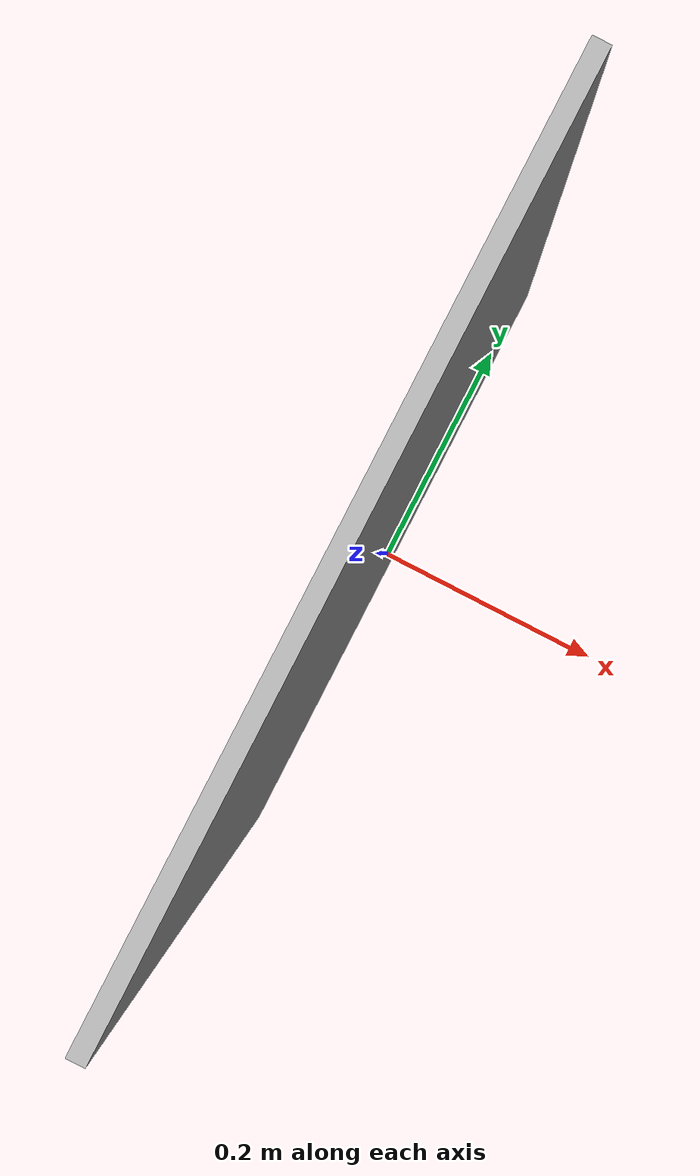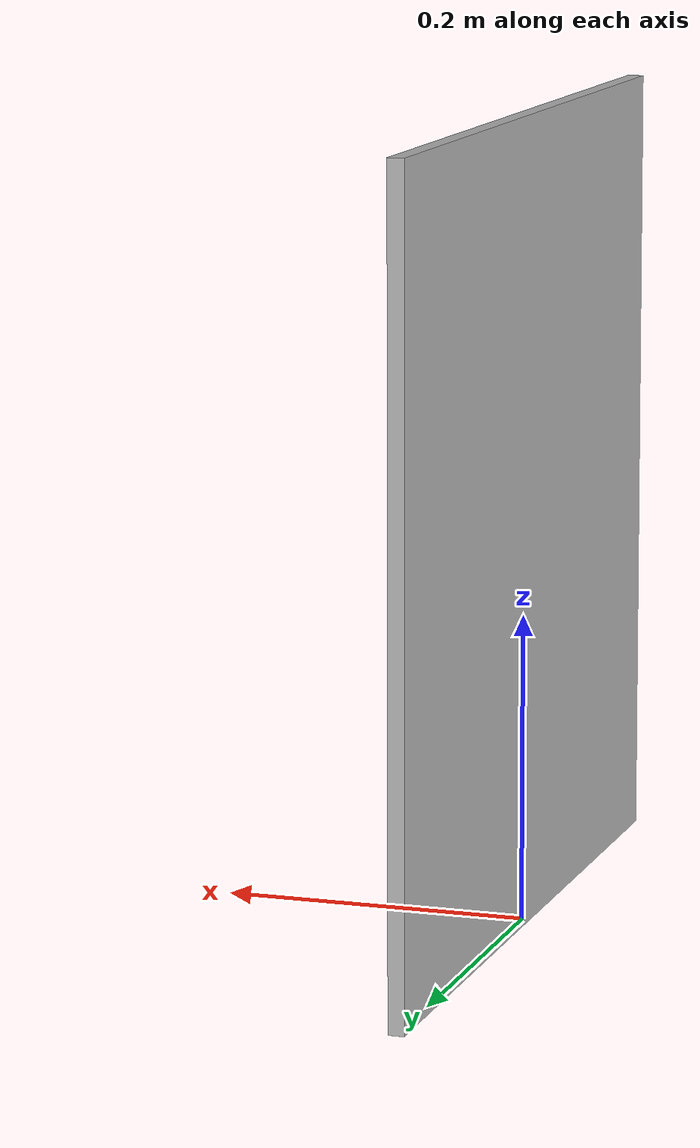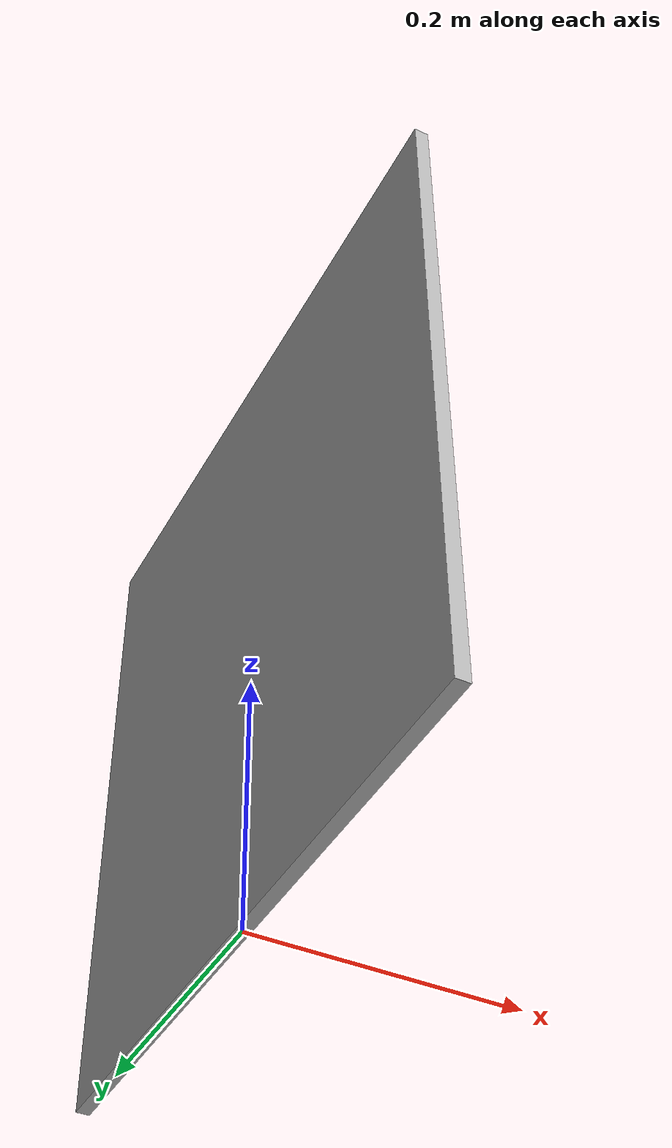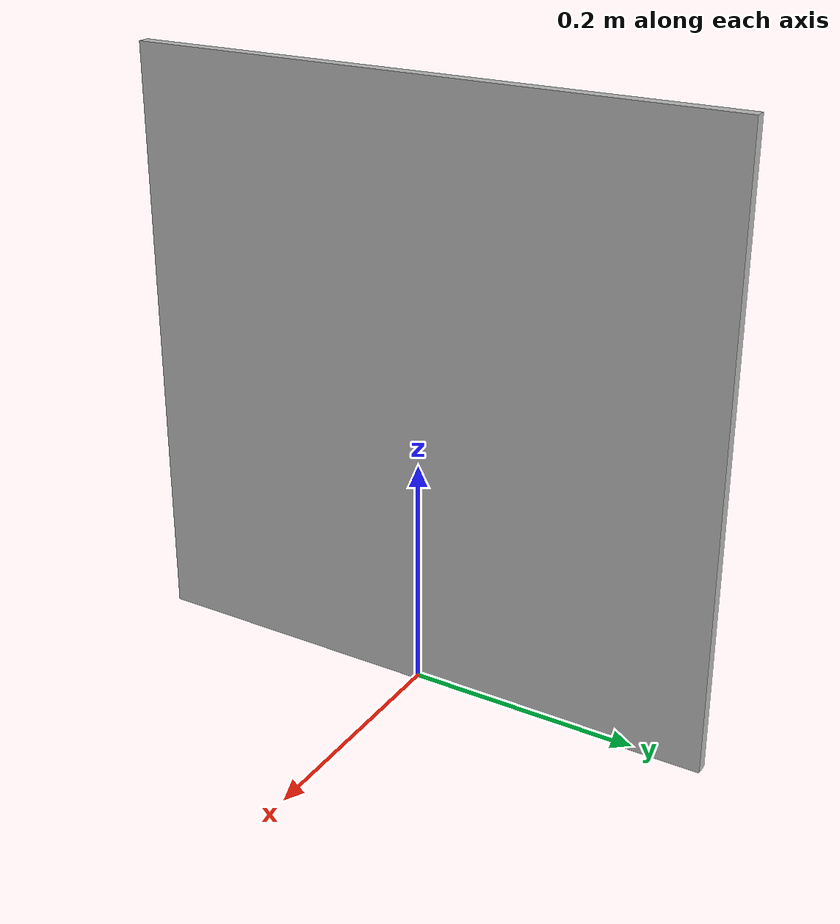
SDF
<?xml version="1.0" ?><sdf version="1.6">
  <model name="tag36_11_00008">
    <static>true</static>
    <link name="link">
      <visual name="visual">
        <geometry>
          <mesh>
            <uri>model://tag36_11_00008/meshes/tag36_11_00008.dae</uri>
          <scale>1.04 1.04 1.04</scale></mesh>
        </geometry>
      </visual>
    </link>
  </model>
</sdf>
